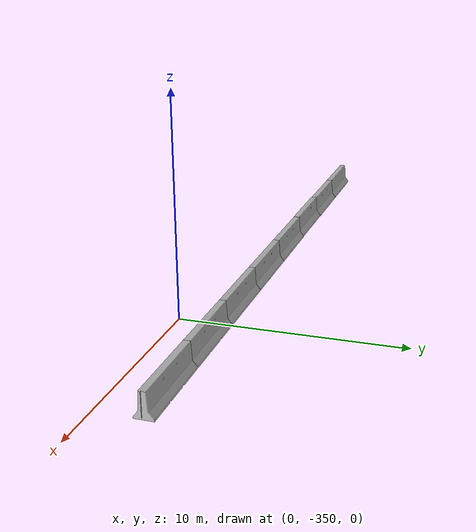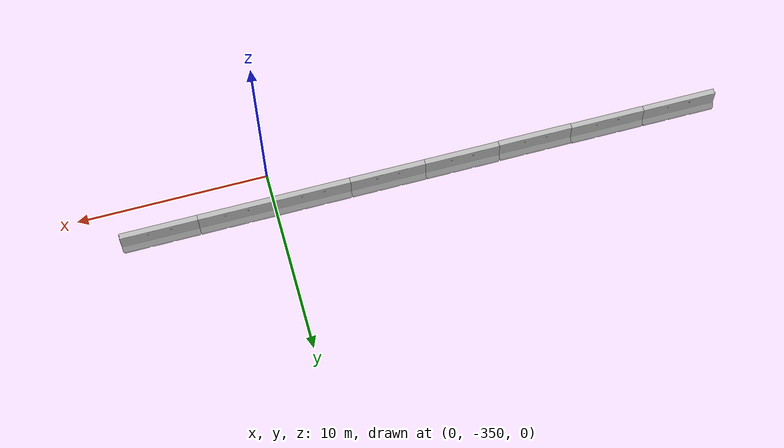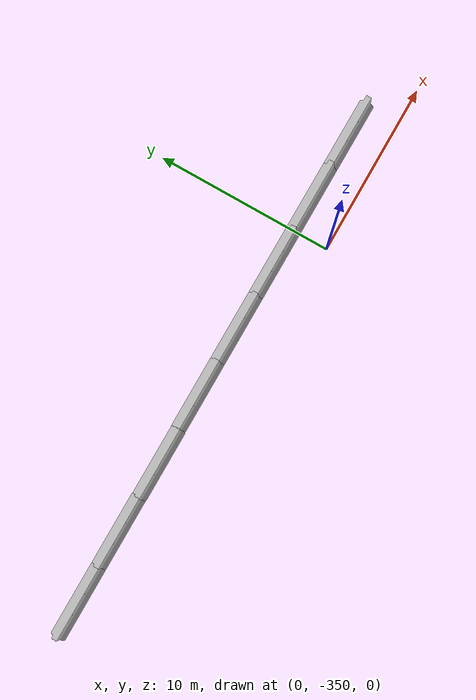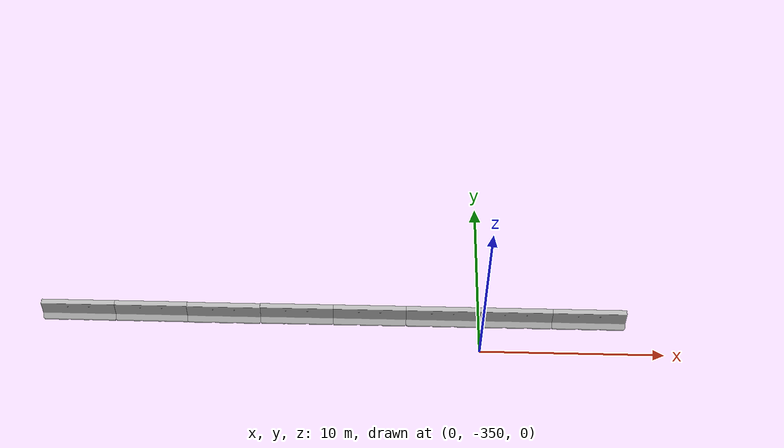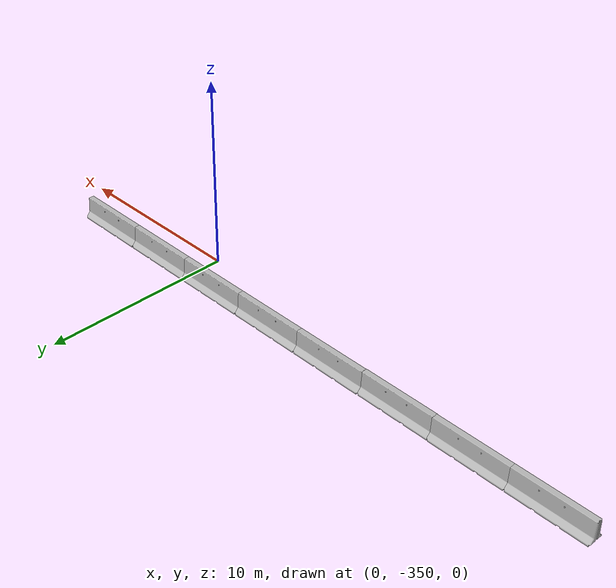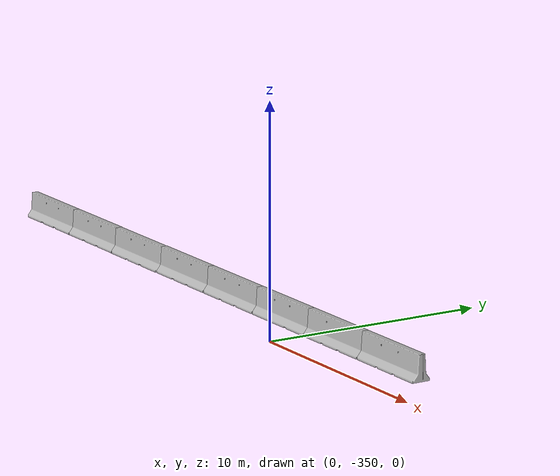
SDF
<sdf version="1.6">
 <world name="default">
  <model name="jersey_barrier_clone">
   <static>1</static>
   <link name="link">
    <visual name="visual">
     <geometry><mesh><uri>model://jersey_barrier/meshes/jersey_barrier.dae</uri></mesh></geometry>
    </visual>
    <collision name="upright">
     <pose>0 0 0.5715 0 -0 0</pose>
     <geometry><box><size>4.06542 0.3063 1.143</size></box></geometry>
    </collision>
    <collision name="base">
     <pose>0 0 0.032258 0 -0 0</pose>
     <geometry><box><size>4.06542 0.8107 0.064516</size></box></geometry>
    </collision>
    <collision name="base2">
     <pose>0 0 0.1 0 -0 0</pose>
     <geometry><box><size>4.06542 0.65 0.1</size></box></geometry>
    </collision>
    <collision name="base3">
     <pose>0 0 0.2 0 -0 0</pose>
     <geometry><box><size>4.06542 0.5 0.1</size></box></geometry>
    </collision>
    <collision name="left-angle">
     <pose>0 -0.224 0.2401 0.9 -0 0</pose>
     <geometry><box><size>4.06542 0.5 0.064516</size></box></geometry>
    </collision>
    <collision name="right-angle">
     <pose>0 0.224 0.2401 -0.9 0 0</pose>
     <geometry><box><size>4.06542 0.5 0.064516</size></box></geometry>
    </collision>
   </link>
   <pose>-22 -348 0 0 -0 0</pose>
  </model>
  <model name="jersey_barrier_clone_clone">
   <static>1</static>
   <link name="link">
    <visual name="visual">
     <geometry><mesh><uri>model://jersey_barrier/meshes/jersey_barrier.dae</uri></mesh></geometry>
    </visual>
    <collision name="upright">
     <pose>0 0 0.5715 0 -0 0</pose>
     <geometry><box><size>4.06542 0.3063 1.143</size></box></geometry>
    </collision>
    <collision name="base">
     <pose>0 0 0.032258 0 -0 0</pose>
     <geometry><box><size>4.06542 0.8107 0.064516</size></box></geometry>
    </collision>
    <collision name="base2">
     <pose>0 0 0.1 0 -0 0</pose>
     <geometry><box><size>4.06542 0.65 0.1</size></box></geometry>
    </collision>
    <collision name="base3">
     <pose>0 0 0.2 0 -0 0</pose>
     <geometry><box><size>4.06542 0.5 0.1</size></box></geometry>
    </collision>
    <collision name="left-angle">
     <pose>0 -0.224 0.2401 0.9 -0 0</pose>
     <geometry><box><size>4.06542 0.5 0.064516</size></box></geometry>
    </collision>
    <collision name="right-angle">
     <pose>0 0.224 0.2401 -0.9 0 0</pose>
     <geometry><box><size>4.06542 0.5 0.064516</size></box></geometry>
    </collision>
   </link>
   <pose>-18 -348 0 0 -0 0</pose>
  </model>
  <model name="jersey_barrier_clone_clone_clone">
   <static>1</static>
   <link name="link">
    <visual name="visual">
     <geometry><mesh><uri>model://jersey_barrier/meshes/jersey_barrier.dae</uri></mesh></geometry>
    </visual>
    <collision name="upright">
     <pose>0 0 0.5715 0 -0 0</pose>
     <geometry><box><size>4.06542 0.3063 1.143</size></box></geometry>
    </collision>
    <collision name="base">
     <pose>0 0 0.032258 0 -0 0</pose>
     <geometry><box><size>4.06542 0.8107 0.064516</size></box></geometry>
    </collision>
    <collision name="base2">
     <pose>0 0 0.1 0 -0 0</pose>
     <geometry><box><size>4.06542 0.65 0.1</size></box></geometry>
    </collision>
    <collision name="base3">
     <pose>0 0 0.2 0 -0 0</pose>
     <geometry><box><size>4.06542 0.5 0.1</size></box></geometry>
    </collision>
    <collision name="left-angle">
     <pose>0 -0.224 0.2401 0.9 -0 0</pose>
     <geometry><box><size>4.06542 0.5 0.064516</size></box></geometry>
    </collision>
    <collision name="right-angle">
     <pose>0 0.224 0.2401 -0.9 0 0</pose>
     <geometry><box><size>4.06542 0.5 0.064516</size></box></geometry>
    </collision>
   </link>
   <pose>-14.0215 -348.019 0 0 -0 0</pose>
  </model>
  <model name="jersey_barrier_clone_clone_clone_clone">
   <static>1</static>
   <link name="link">
    <visual name="visual">
     <geometry><mesh><uri>model://jersey_barrier/meshes/jersey_barrier.dae</uri></mesh></geometry>
    </visual>
    <collision name="upright">
     <pose>0 0 0.5715 0 -0 0</pose>
     <geometry><box><size>4.06542 0.3063 1.143</size></box></geometry>
    </collision>
    <collision name="base">
     <pose>0 0 0.032258 0 -0 0</pose>
     <geometry><box><size>4.06542 0.8107 0.064516</size></box></geometry>
    </collision>
    <collision name="base2">
     <pose>0 0 0.1 0 -0 0</pose>
     <geometry><box><size>4.06542 0.65 0.1</size></box></geometry>
    </collision>
    <collision name="base3">
     <pose>0 0 0.2 0 -0 0</pose>
     <geometry><box><size>4.06542 0.5 0.1</size></box></geometry>
    </collision>
    <collision name="left-angle">
     <pose>0 -0.224 0.2401 0.9 -0 0</pose>
     <geometry><box><size>4.06542 0.5 0.064516</size></box></geometry>
    </collision>
    <collision name="right-angle">
     <pose>0 0.224 0.2401 -0.9 0 0</pose>
     <geometry><box><size>4.06542 0.5 0.064516</size></box></geometry>
    </collision>
   </link>
   <pose>-10 -348 0 0 -0 0</pose>
  </model>
  <model name="jersey_barrier_clone_clone_clone_clone_clone">
   <static>1</static>
   <link name="link">
    <visual name="visual">
     <geometry><mesh><uri>model://jersey_barrier/meshes/jersey_barrier.dae</uri></mesh></geometry>
    </visual>
    <collision name="upright">
     <pose>0 0 0.5715 0 -0 0</pose>
     <geometry><box><size>4.06542 0.3063 1.143</size></box></geometry>
    </collision>
    <collision name="base">
     <pose>0 0 0.032258 0 -0 0</pose>
     <geometry><box><size>4.06542 0.8107 0.064516</size></box></geometry>
    </collision>
    <collision name="base2">
     <pose>0 0 0.1 0 -0 0</pose>
     <geometry><box><size>4.06542 0.65 0.1</size></box></geometry>
    </collision>
    <collision name="base3">
     <pose>0 0 0.2 0 -0 0</pose>
     <geometry><box><size>4.06542 0.5 0.1</size></box></geometry>
    </collision>
    <collision name="left-angle">
     <pose>0 -0.224 0.2401 0.9 -0 0</pose>
     <geometry><box><size>4.06542 0.5 0.064516</size></box></geometry>
    </collision>
    <collision name="right-angle">
     <pose>0 0.224 0.2401 -0.9 0 0</pose>
     <geometry><box><size>4.06542 0.5 0.064516</size></box></geometry>
    </collision>
   </link>
   <pose>-6 -348 0 0 -0 0</pose>
  </model>
  <model name="jersey_barrier_clone_clone_clone_clone_clone_clone">
   <static>1</static>
   <link name="link">
    <visual name="visual">
     <geometry><mesh><uri>model://jersey_barrier/meshes/jersey_barrier.dae</uri></mesh></geometry>
    </visual>
    <collision name="upright">
     <pose>0 0 0.5715 0 -0 0</pose>
     <geometry><box><size>4.06542 0.3063 1.143</size></box></geometry>
    </collision>
    <collision name="base">
     <pose>0 0 0.032258 0 -0 0</pose>
     <geometry><box><size>4.06542 0.8107 0.064516</size></box></geometry>
    </collision>
    <collision name="base2">
     <pose>0 0 0.1 0 -0 0</pose>
     <geometry><box><size>4.06542 0.65 0.1</size></box></geometry>
    </collision>
    <collision name="base3">
     <pose>0 0 0.2 0 -0 0</pose>
     <geometry><box><size>4.06542 0.5 0.1</size></box></geometry>
    </collision>
    <collision name="left-angle">
     <pose>0 -0.224 0.2401 0.9 -0 0</pose>
     <geometry><box><size>4.06542 0.5 0.064516</size></box></geometry>
    </collision>
    <collision name="right-angle">
     <pose>0 0.224 0.2401 -0.9 0 0</pose>
     <geometry><box><size>4.06542 0.5 0.064516</size></box></geometry>
    </collision>
   </link>
   <pose>-2 -348 0 0 -0 0</pose>
  </model>
  <model name="jersey_barrier_clone_clone_clone_clone_clone_clone_clone">
   <static>1</static>
   <link name="link">
    <visual name="visual">
     <geometry><mesh><uri>model://jersey_barrier/meshes/jersey_barrier.dae</uri></mesh></geometry>
    </visual>
    <collision name="upright">
     <pose>0 0 0.5715 0 -0 0</pose>
     <geometry><box><size>4.06542 0.3063 1.143</size></box></geometry>
    </collision>
    <collision name="base">
     <pose>0 0 0.032258 0 -0 0</pose>
     <geometry><box><size>4.06542 0.8107 0.064516</size></box></geometry>
    </collision>
    <collision name="base2">
     <pose>0 0 0.1 0 -0 0</pose>
     <geometry><box><size>4.06542 0.65 0.1</size></box></geometry>
    </collision>
    <collision name="base3">
     <pose>0 0 0.2 0 -0 0</pose>
     <geometry><box><size>4.06542 0.5 0.1</size></box></geometry>
    </collision>
    <collision name="left-angle">
     <pose>0 -0.224 0.2401 0.9 -0 0</pose>
     <geometry><box><size>4.06542 0.5 0.064516</size></box></geometry>
    </collision>
    <collision name="right-angle">
     <pose>0 0.224 0.2401 -0.9 0 0</pose>
     <geometry><box><size>4.06542 0.5 0.064516</size></box></geometry>
    </collision>
   </link>
   <pose>6 -348 0 0 -0 0</pose>
  </model>
  <model name="jersey_barrier_clone_clone_clone_clone_clone_clone_clone_clone">
   <static>1</static>
   <link name="link">
    <visual name="visual">
     <geometry><mesh><uri>model://jersey_barrier/meshes/jersey_barrier.dae</uri></mesh></geometry>
    </visual>
    <collision name="upright">
     <pose>0 0 0.5715 0 -0 0</pose>
     <geometry><box><size>4.06542 0.3063 1.143</size></box></geometry>
    </collision>
    <collision name="base">
     <pose>0 0 0.032258 0 -0 0</pose>
     <geometry><box><size>4.06542 0.8107 0.064516</size></box></geometry>
    </collision>
    <collision name="base2">
     <pose>0 0 0.1 0 -0 0</pose>
     <geometry><box><size>4.06542 0.65 0.1</size></box></geometry>
    </collision>
    <collision name="base3">
     <pose>0 0 0.2 0 -0 0</pose>
     <geometry><box><size>4.06542 0.5 0.1</size></box></geometry>
    </collision>
    <collision name="left-angle">
     <pose>0 -0.224 0.2401 0.9 -0 0</pose>
     <geometry><box><size>4.06542 0.5 0.064516</size></box></geometry>
    </collision>
    <collision name="right-angle">
     <pose>0 0.224 0.2401 -0.9 0 0</pose>
     <geometry><box><size>4.06542 0.5 0.064516</size></box></geometry>
    </collision>
   </link>
   <pose>2 -348 0 0 -0 0</pose>
  </model>
 </world>
</sdf>
